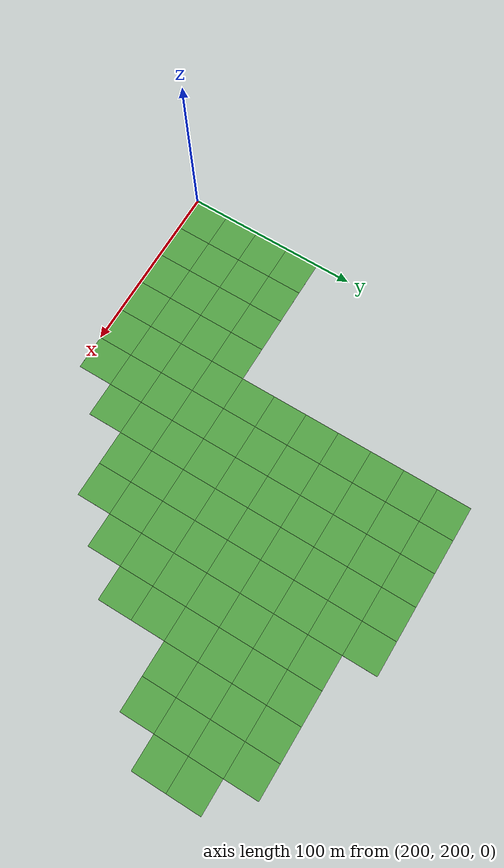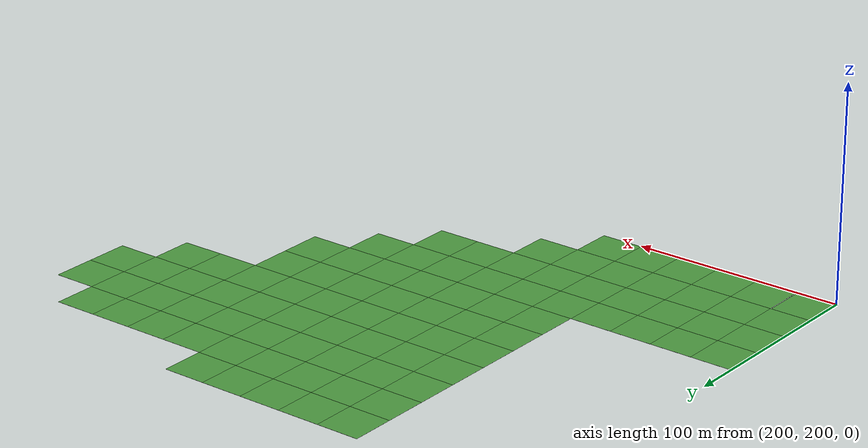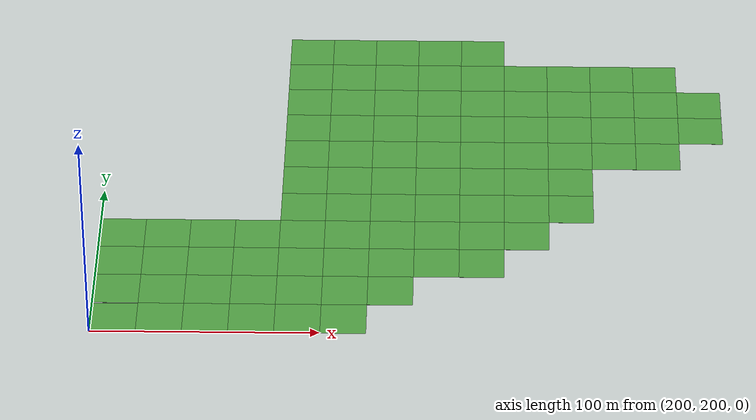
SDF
<?xml version="1.0" ?>
<sdf version="1.5">
  <world name="default">
    <!-- A global light source -->
    <include>
      <uri>model://sun</uri>
    </include>
    <include>
      <uri>model://grass_plane</uri>
      <pose>250 250 -0.1 0 0 0</pose>
    </include>
    <plugin name='dryden_world' filename='libgazebo_dryden_plugin.so'>
      <frameId>base_link</frameId>
      <robotNamespace/>
      <windVelocityMean>3.0</windVelocityMean>
      <windVelocityMax>3.0</windVelocityMax>
      <windVelocityVariance>0</windVelocityVariance>
      <windDirectionMean>0 1 0</windDirectionMean>
      <windDirectionVariance>0</windDirectionVariance>
      <windGustStart>1</windGustStart>
      <windGustDuration>500</windGustDuration>
      <windGustVelocityMean>3.0</windGustVelocityMean>
      <windGustVelocityMax>3.0</windGustVelocityMax>
      <windGustVelocityVariance>0.1</windGustVelocityVariance>
      <windGustDirectionMean>1 0 0</windGustDirectionMean>
      <windGustDirectionVariance>0.5</windGustDirectionVariance>
      <windPubTopic>world_wind</windPubTopic>
    </plugin>
    <physics name='default_physics' default='0' type='ode'>
      <gravity>0 0 -9.8066</gravity>
      <ode>
        <solver>
          <type>quick</type>
          <iters>10</iters>
          <sor>1.3</sor>
          <use_dynamic_moi_rescaling>0</use_dynamic_moi_rescaling>
        </solver>
        <constraints>
          <cfm>0</cfm>
          <erp>0.2</erp>
          <contact_max_correcting_vel>100</contact_max_correcting_vel>
          <contact_surface_layer>0.001</contact_surface_layer>
        </constraints>
      </ode>
      <max_step_size>0.004</max_step_size>
      <real_time_factor>1</real_time_factor>
      <real_time_update_rate>250</real_time_update_rate>
      <magnetic_field>6.0e-6 2.3e-5 -4.2e-5</magnetic_field>
    </physics>
  </world>
</sdf>

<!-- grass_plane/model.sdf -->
<sdf version='1.4'>
  <model name='grass_plane'>
    <static>true</static>
    <link name='link'>
      <collision name='collision'>
        <geometry>
          <plane>
            <normal>0 0 1</normal>
            <size>500 500</size>
          </plane>
        </geometry>
        <surface>
          <friction>
            <ode>
              <mu>0.5</mu>
              <mu2>.5</mu2>
            </ode>
          </friction>
        </surface>
      </collision>

      <visual name='visual_0'>
        <pose>-40 -40 0 0 0 0</pose>

        <cast_shadows>false</cast_shadows>
        <geometry>
          <plane>
            <normal>0 0 1</normal>
            <size>20 20</size>
          </plane>
        </geometry>
        <material>
          <script>
            <uri>model://../model_source/models/grass_plane/materials/scripts</uri>
            <uri>model://../model_source/models/grass_plane/materials/textures</uri>
            <name>vrc/grass</name>
          </script>
        </material>
      </visual>

      <visual name='visual_1'>
        <pose>-20 -40 0 0 0 0</pose>

        <cast_shadows>false</cast_shadows>
        <geometry>
          <plane>
            <normal>0 0 1</normal>
            <size>20 20</size>
          </plane>
        </geometry>
        <material>
          <script>
            <uri>model://../model_source/models/grass_plane/materials/scripts</uri>
            <uri>model://../model_source/models/grass_plane/materials/textures</uri>
            <name>vrc/grass</name>
          </script>
        </material>
      </visual>

      <visual name='visual_2'>
        <pose>0 -40 0 0 0 0</pose>

        <cast_shadows>false</cast_shadows>
        <geometry>
          <plane>
            <normal>0 0 1</normal>
            <size>20 20</size>
          </plane>
        </geometry>
        <material>
          <script>
            <uri>model://../model_source/models/grass_plane/materials/scripts</uri>
            <uri>model://../model_source/models/grass_plane/materials/textures</uri>
            <name>vrc/grass</name>
          </script>
        </material>
      </visual>

      <visual name='visual_3'>
        <pose>20 -40 0 0 0 0</pose>

        <cast_shadows>false</cast_shadows>
        <geometry>
          <plane>
            <normal>0 0 1</normal>
            <size>20 20</size>
          </plane>
        </geometry>
        <material>
          <script>
            <uri>model://../model_source/models/grass_plane/materials/scripts</uri>
            <uri>model://../model_source/models/grass_plane/materials/textures</uri>
            <name>vrc/grass</name>
          </script>
        </material>
      </visual>

      <visual name='visual_4'>
        <pose>40 -40 0 0 0 0</pose>

        <cast_shadows>false</cast_shadows>
        <geometry>
          <plane>
            <normal>0 0 1</normal>
            <size>20 20</size>
          </plane>
        </geometry>
        <material>
          <script>
            <uri>model://../model_source/models/grass_plane/materials/scripts</uri>
            <uri>model://../model_source/models/grass_plane/materials/textures</uri>
            <name>vrc/grass</name>
          </script>
        </material>
      </visual>

      <visual name='visual_5'>
        <pose>60 -40 0 0 0 0</pose>

        <cast_shadows>false</cast_shadows>
        <geometry>
          <plane>
            <normal>0 0 1</normal>
            <size>20 20</size>
          </plane>
        </geometry>
        <material>
          <script>
            <uri>model://../model_source/models/grass_plane/materials/scripts</uri>
            <uri>model://../model_source/models/grass_plane/materials/textures</uri>
            <name>vrc/grass</name>
          </script>
        </material>
      </visual>

      <visual name='visual_6'>
        <pose>-40 -20 0 0 0 0</pose>

        <cast_shadows>false</cast_shadows>
        <geometry>
          <plane>
            <normal>0 0 1</normal>
            <size>20 20</size>
          </plane>
        </geometry>
        <material>
          <script>
            <uri>model://../model_source/models/grass_plane/materials/scripts</uri>
            <uri>model://../model_source/models/grass_plane/materials/textures</uri>
            <name>vrc/grass</name>
          </script>
        </material>
      </visual>

      <visual name='visual_7'>
        <pose>-20 -20 0 0 0 0</pose>

        <cast_shadows>false</cast_shadows>
        <geometry>
          <plane>
            <normal>0 0 1</normal>
            <size>20 20</size>
          </plane>
        </geometry>
        <material>
          <script>
            <uri>model://../model_source/models/grass_plane/materials/scripts</uri>
            <uri>model://../model_source/models/grass_plane/materials/textures</uri>
            <name>vrc/grass</name>
          </script>
        </material>
      </visual>

      <visual name='visual_8'>
        <pose>0 -20 0 0 0 0</pose>

        <cast_shadows>false</cast_shadows>
        <geometry>
          <plane>
            <normal>0 0 1</normal>
            <size>20 20</size>
          </plane>
        </geometry>
        <material>
          <script>
            <uri>model://../model_source/models/grass_plane/materials/scripts</uri>
            <uri>model://../model_source/models/grass_plane/materials/textures</uri>
            <name>vrc/grass</name>
          </script>
        </material>
      </visual>

      <visual name='visual_9'>
        <pose>20 -20 0 0 0 0</pose>

        <cast_shadows>false</cast_shadows>
        <geometry>
          <plane>
            <normal>0 0 1</normal>
            <size>20 20</size>
          </plane>
        </geometry>
        <material>
          <script>
            <uri>model://../model_source/models/grass_plane/materials/scripts</uri>
            <uri>model://../model_source/models/grass_plane/materials/textures</uri>
            <name>vrc/grass</name>
          </script>
        </material>
      </visual>

      <visual name='visual_10'>
        <pose>40 -20 0 0 0 0</pose>

        <cast_shadows>false</cast_shadows>
        <geometry>
          <plane>
            <normal>0 0 1</normal>
            <size>20 20</size>
          </plane>
        </geometry>
        <material>
          <script>
            <uri>model://../model_source/models/grass_plane/materials/scripts</uri>
            <uri>model://../model_source/models/grass_plane/materials/textures</uri>
            <name>vrc/grass</name>
          </script>
        </material>
      </visual>

      <visual name='visual_11'>
        <pose>60 -20 0 0 0 0</pose>

        <cast_shadows>false</cast_shadows>
        <geometry>
          <plane>
            <normal>0 0 1</normal>
            <size>20 20</size>
          </plane>
        </geometry>
        <material>
          <script>
            <uri>model://../model_source/models/grass_plane/materials/scripts</uri>
            <uri>model://../model_source/models/grass_plane/materials/textures</uri>
            <name>vrc/grass</name>
          </script>
        </material>
      </visual>

      <visual name='visual_12'>
        <pose>80 -20 0 0 0 0</pose>

        <cast_shadows>false</cast_shadows>
        <geometry>
          <plane>
            <normal>0 0 1</normal>
            <size>20 20</size>
          </plane>
        </geometry>
        <material>
          <script>
            <uri>model://../model_source/models/grass_plane/materials/scripts</uri>
            <uri>model://../model_source/models/grass_plane/materials/textures</uri>
            <name>vrc/grass</name>
          </script>
        </material>
      </visual>

      <visual name='visual_13'>
        <pose>-40 0 0 0 0 0</pose>

        <cast_shadows>false</cast_shadows>
        <geometry>
          <plane>
            <normal>0 0 1</normal>
            <size>20 20</size>
          </plane>
        </geometry>
        <material>
          <script>
            <uri>model://../model_source/models/grass_plane/materials/scripts</uri>
            <uri>model://../model_source/models/grass_plane/materials/textures</uri>
            <name>vrc/grass</name>
          </script>
        </material>
      </visual>

      <visual name='visual_14'>
        <pose>-20 0 0 0 0 0</pose>

        <cast_shadows>false</cast_shadows>
        <geometry>
          <plane>
            <normal>0 0 1</normal>
            <size>20 20</size>
          </plane>
        </geometry>
        <material>
          <script>
            <uri>model://../model_source/models/grass_plane/materials/scripts</uri>
            <uri>model://../model_source/models/grass_plane/materials/textures</uri>
            <name>vrc/grass</name>
          </script>
        </material>
      </visual>

      <visual name='visual_15'>
        <pose>0 0 0 0 0 0</pose>

        <cast_shadows>false</cast_shadows>
        <geometry>
          <plane>
            <normal>0 0 1</normal>
            <size>20 20</size>
          </plane>
        </geometry>
        <material>
          <script>
            <uri>model://../model_source/models/grass_plane/materials/scripts</uri>
            <uri>model://../model_source/models/grass_plane/materials/textures</uri>
            <name>vrc/grass</name>
          </script>
        </material>
      </visual>

      <visual name='visual_16'>
        <pose>20 0 0 0 0 0</pose>

        <cast_shadows>false</cast_shadows>
        <geometry>
          <plane>
            <normal>0 0 1</normal>
            <size>20 20</size>
          </plane>
        </geometry>
        <material>
          <script>
            <uri>model://../model_source/models/grass_plane/materials/scripts</uri>
            <uri>model://../model_source/models/grass_plane/materials/textures</uri>
            <name>vrc/grass</name>
          </script>
        </material>
      </visual>

      <visual name='visual_17'>
        <pose>40 0 0 0 0 0</pose>

        <cast_shadows>false</cast_shadows>
        <geometry>
          <plane>
            <normal>0 0 1</normal>
            <size>20 20</size>
          </plane>
        </geometry>
        <material>
          <script>
            <uri>model://../model_source/models/grass_plane/materials/scripts</uri>
            <uri>model://../model_source/models/grass_plane/materials/textures</uri>
            <name>vrc/grass</name>
          </script>
        </material>
      </visual>

      <visual name='visual_18'>
        <pose>60 0 0 0 0 0</pose>

        <cast_shadows>false</cast_shadows>
        <geometry>
          <plane>
            <normal>0 0 1</normal>
            <size>20 20</size>
          </plane>
        </geometry>
        <material>
          <script>
            <uri>model://../model_source/models/grass_plane/materials/scripts</uri>
            <uri>model://../model_source/models/grass_plane/materials/textures</uri>
            <name>vrc/grass</name>
          </script>
        </material>
      </visual>

      <visual name='visual_19'>
        <pose>80 0 0 0 0 0</pose>

        <cast_shadows>false</cast_shadows>
        <geometry>
          <plane>
            <normal>0 0 1</normal>
            <size>20 20</size>
          </plane>
        </geometry>
        <material>
          <script>
            <uri>model://../model_source/models/grass_plane/materials/scripts</uri>
            <uri>model://../model_source/models/grass_plane/materials/textures</uri>
            <name>vrc/grass</name>
          </script>
        </material>
      </visual>

      <visual name='visual_20'>
        <pose>100 0 0 0 0 0</pose>

        <cast_shadows>false</cast_shadows>
        <geometry>
          <plane>
            <normal>0 0 1</normal>
            <size>20 20</size>
          </plane>
        </geometry>
        <material>
          <script>
            <uri>model://../model_source/models/grass_plane/materials/scripts</uri>
            <uri>model://../model_source/models/grass_plane/materials/textures</uri>
            <name>vrc/grass</name>
          </script>
        </material>
      </visual>

      <visual name='visual_21'>
        <pose>120 0 0 0 0 0</pose>

        <cast_shadows>false</cast_shadows>
        <geometry>
          <plane>
            <normal>0 0 1</normal>
            <size>20 20</size>
          </plane>
        </geometry>
        <material>
          <script>
            <uri>model://../model_source/models/grass_plane/materials/scripts</uri>
            <uri>model://../model_source/models/grass_plane/materials/textures</uri>
            <name>vrc/grass</name>
          </script>
        </material>
      </visual>

      <visual name='visual_22'>
        <pose>-40 20 0 0 0 0</pose>

        <cast_shadows>false</cast_shadows>
        <geometry>
          <plane>
            <normal>0 0 1</normal>
            <size>20 20</size>
          </plane>
        </geometry>
        <material>
          <script>
            <uri>model://../model_source/models/grass_plane/materials/scripts</uri>
            <uri>model://../model_source/models/grass_plane/materials/textures</uri>
            <name>vrc/grass</name>
          </script>
        </material>
      </visual>

      <visual name='visual_23'>
        <pose>-20 20 0 0 0 0</pose>

        <cast_shadows>false</cast_shadows>
        <geometry>
          <plane>
            <normal>0 0 1</normal>
            <size>20 20</size>
          </plane>
        </geometry>
        <material>
          <script>
            <uri>model://../model_source/models/grass_plane/materials/scripts</uri>
            <uri>model://../model_source/models/grass_plane/materials/textures</uri>
            <name>vrc/grass</name>
          </script>
        </material>
      </visual>

      <visual name='visual_24'>
        <pose>0 20 0 0 0 0</pose>

        <cast_shadows>false</cast_shadows>
        <geometry>
          <plane>
            <normal>0 0 1</normal>
            <size>20 20</size>
          </plane>
        </geometry>
        <material>
          <script>
            <uri>model://../model_source/models/grass_plane/materials/scripts</uri>
            <uri>model://../model_source/models/grass_plane/materials/textures</uri>
            <name>vrc/grass</name>
          </script>
        </material>
      </visual>

      <visual name='visual_25'>
        <pose>20 20 0 0 0 0</pose>

        <cast_shadows>false</cast_shadows>
        <geometry>
          <plane>
            <normal>0 0 1</normal>
            <size>20 20</size>
          </plane>
        </geometry>
        <material>
          <script>
            <uri>model://../model_source/models/grass_plane/materials/scripts</uri>
            <uri>model://../model_source/models/grass_plane/materials/textures</uri>
            <name>vrc/grass</name>
          </script>
        </material>
      </visual>

      <visual name='visual_26'>
        <pose>40 20 0 0 0 0</pose>

        <cast_shadows>false</cast_shadows>
        <geometry>
          <plane>
            <normal>0 0 1</normal>
            <size>20 20</size>
          </plane>
        </geometry>
        <material>
          <script>
            <uri>model://../model_source/models/grass_plane/materials/scripts</uri>
            <uri>model://../model_source/models/grass_plane/materials/textures</uri>
            <name>vrc/grass</name>
          </script>
        </material>
      </visual>

      <visual name='visual_27'>
        <pose>60 20 0 0 0 0</pose>

        <cast_shadows>false</cast_shadows>
        <geometry>
          <plane>
            <normal>0 0 1</normal>
            <size>20 20</size>
          </plane>
        </geometry>
        <material>
          <script>
            <uri>model://../model_source/models/grass_plane/materials/scripts</uri>
            <uri>model://../model_source/models/grass_plane/materials/textures</uri>
            <name>vrc/grass</name>
          </script>
        </material>
      </visual>

      <visual name='visual_28'>
        <pose>80 20 0 0 0 0</pose>

        <cast_shadows>false</cast_shadows>
        <geometry>
          <plane>
            <normal>0 0 1</normal>
            <size>20 20</size>
          </plane>
        </geometry>
        <material>
          <script>
            <uri>model://../model_source/models/grass_plane/materials/scripts</uri>
            <uri>model://../model_source/models/grass_plane/materials/textures</uri>
            <name>vrc/grass</name>
          </script>
        </material>
      </visual>

      <visual name='visual_29'>
        <pose>100 20 0 0 0 0</pose>

        <cast_shadows>false</cast_shadows>
        <geometry>
          <plane>
            <normal>0 0 1</normal>
            <size>20 20</size>
          </plane>
        </geometry>
        <material>
          <script>
            <uri>model://../model_source/models/grass_plane/materials/scripts</uri>
            <uri>model://../model_source/models/grass_plane/materials/textures</uri>
            <name>vrc/grass</name>
          </script>
        </material>
      </visual>

      <visual name='visual_30'>
        <pose>120 20 0 0 0 0</pose>

        <cast_shadows>false</cast_shadows>
        <geometry>
          <plane>
            <normal>0 0 1</normal>
            <size>20 20</size>
          </plane>
        </geometry>
        <material>
          <script>
            <uri>model://../model_source/models/grass_plane/materials/scripts</uri>
            <uri>model://../model_source/models/grass_plane/materials/textures</uri>
            <name>vrc/grass</name>
          </script>
        </material>
      </visual>

      <visual name='visual_31'>
        <pose>140 20 0 0 0 0</pose>

        <cast_shadows>false</cast_shadows>
        <geometry>
          <plane>
            <normal>0 0 1</normal>
            <size>20 20</size>
          </plane>
        </geometry>
        <material>
          <script>
            <uri>model://../model_source/models/grass_plane/materials/scripts</uri>
            <uri>model://../model_source/models/grass_plane/materials/textures</uri>
            <name>vrc/grass</name>
          </script>
        </material>
      </visual>

      <visual name='visual_32'>
        <pose>40 40 0 0 0 0</pose>

        <cast_shadows>false</cast_shadows>
        <geometry>
          <plane>
            <normal>0 0 1</normal>
            <size>20 20</size>
          </plane>
        </geometry>
        <material>
          <script>
            <uri>model://../model_source/models/grass_plane/materials/scripts</uri>
            <uri>model://../model_source/models/grass_plane/materials/textures</uri>
            <name>vrc/grass</name>
          </script>
        </material>
      </visual>

      <visual name='visual_33'>
        <pose>60 40 0 0 0 0</pose>

        <cast_shadows>false</cast_shadows>
        <geometry>
          <plane>
            <normal>0 0 1</normal>
            <size>20 20</size>
          </plane>
        </geometry>
        <material>
          <script>
            <uri>model://../model_source/models/grass_plane/materials/scripts</uri>
            <uri>model://../model_source/models/grass_plane/materials/textures</uri>
            <name>vrc/grass</name>
          </script>
        </material>
      </visual>

      <visual name='visual_34'>
        <pose>80 40 0 0 0 0</pose>

        <cast_shadows>false</cast_shadows>
        <geometry>
          <plane>
            <normal>0 0 1</normal>
            <size>20 20</size>
          </plane>
        </geometry>
        <material>
          <script>
            <uri>model://../model_source/models/grass_plane/materials/scripts</uri>
            <uri>model://../model_source/models/grass_plane/materials/textures</uri>
            <name>vrc/grass</name>
          </script>
        </material>
      </visual>

      <visual name='visual_35'>
        <pose>100 40 0 0 0 0</pose>

        <cast_shadows>false</cast_shadows>
        <geometry>
          <plane>
            <normal>0 0 1</normal>
            <size>20 20</size>
          </plane>
        </geometry>
        <material>
          <script>
            <uri>model://../model_source/models/grass_plane/materials/scripts</uri>
            <uri>model://../model_source/models/grass_plane/materials/textures</uri>
            <name>vrc/grass</name>
          </script>
        </material>
      </visual>

      <visual name='visual_36'>
        <pose>120 40 0 0 0 0</pose>

        <cast_shadows>false</cast_shadows>
        <geometry>
          <plane>
            <normal>0 0 1</normal>
            <size>20 20</size>
          </plane>
        </geometry>
        <material>
          <script>
            <uri>model://../model_source/models/grass_plane/materials/scripts</uri>
            <uri>model://../model_source/models/grass_plane/materials/textures</uri>
            <name>vrc/grass</name>
          </script>
        </material>
      </visual>

      <visual name='visual_37'>
        <pose>140 40 0 0 0 0</pose>

        <cast_shadows>false</cast_shadows>
        <geometry>
          <plane>
            <normal>0 0 1</normal>
            <size>20 20</size>
          </plane>
        </geometry>
        <material>
          <script>
            <uri>model://../model_source/models/grass_plane/materials/scripts</uri>
            <uri>model://../model_source/models/grass_plane/materials/textures</uri>
            <name>vrc/grass</name>
          </script>
        </material>
      </visual>

      <visual name='visual_38'>
        <pose>160 40 0 0 0 0</pose>

        <cast_shadows>false</cast_shadows>
        <geometry>
          <plane>
            <normal>0 0 1</normal>
            <size>20 20</size>
          </plane>
        </geometry>
        <material>
          <script>
            <uri>model://../model_source/models/grass_plane/materials/scripts</uri>
            <uri>model://../model_source/models/grass_plane/materials/textures</uri>
            <name>vrc/grass</name>
          </script>
        </material>
      </visual>

      <visual name='visual_39'>
        <pose>40 60 0 0 0 0</pose>

        <cast_shadows>false</cast_shadows>
        <geometry>
          <plane>
            <normal>0 0 1</normal>
            <size>20 20</size>
          </plane>
        </geometry>
        <material>
          <script>
            <uri>model://../model_source/models/grass_plane/materials/scripts</uri>
            <uri>model://../model_source/models/grass_plane/materials/textures</uri>
            <name>vrc/grass</name>
          </script>
        </material>
      </visual>

      <visual name='visual_40'>
        <pose>60 60 0 0 0 0</pose>

        <cast_shadows>false</cast_shadows>
        <geometry>
          <plane>
            <normal>0 0 1</normal>
            <size>20 20</size>
          </plane>
        </geometry>
        <material>
          <script>
            <uri>model://../model_source/models/grass_plane/materials/scripts</uri>
            <uri>model://../model_source/models/grass_plane/materials/textures</uri>
            <name>vrc/grass</name>
          </script>
        </material>
      </visual>

      <visual name='visual_41'>
        <pose>80 60 0 0 0 0</pose>

        <cast_shadows>false</cast_shadows>
        <geometry>
          <plane>
            <normal>0 0 1</normal>
            <size>20 20</size>
          </plane>
        </geometry>
        <material>
          <script>
            <uri>model://../model_source/models/grass_plane/materials/scripts</uri>
            <uri>model://../model_source/models/grass_plane/materials/textures</uri>
            <name>vrc/grass</name>
          </script>
        </material>
      </visual>

      <visual name='visual_42'>
        <pose>100 60 0 0 0 0</pose>

        <cast_shadows>false</cast_shadows>
        <geometry>
          <plane>
            <normal>0 0 1</normal>
            <size>20 20</size>
          </plane>
        </geometry>
        <material>
          <script>
            <uri>model://../model_source/models/grass_plane/materials/scripts</uri>
            <uri>model://../model_source/models/grass_plane/materials/textures</uri>
            <name>vrc/grass</name>
          </script>
        </material>
      </visual>

      <visual name='visual_43'>
        <pose>120 60 0 0 0 0</pose>

        <cast_shadows>false</cast_shadows>
        <geometry>
          <plane>
            <normal>0 0 1</normal>
            <size>20 20</size>
          </plane>
        </geometry>
        <material>
          <script>
            <uri>model://../model_source/models/grass_plane/materials/scripts</uri>
            <uri>model://../model_source/models/grass_plane/materials/textures</uri>
            <name>vrc/grass</name>
          </script>
        </material>
      </visual>

      <visual name='visual_44'>
        <pose>140 60 0 0 0 0</pose>

        <cast_shadows>false</cast_shadows>
        <geometry>
          <plane>
            <normal>0 0 1</normal>
            <size>20 20</size>
          </plane>
        </geometry>
        <material>
          <script>
            <uri>model://../model_source/models/grass_plane/materials/scripts</uri>
            <uri>model://../model_source/models/grass_plane/materials/textures</uri>
            <name>vrc/grass</name>
          </script>
        </material>
      </visual>

      <visual name='visual_45'>
        <pose>160 60 0 0 0 0</pose>

        <cast_shadows>false</cast_shadows>
        <geometry>
          <plane>
            <normal>0 0 1</normal>
            <size>20 20</size>
          </plane>
        </geometry>
        <material>
          <script>
            <uri>model://../model_source/models/grass_plane/materials/scripts</uri>
            <uri>model://../model_source/models/grass_plane/materials/textures</uri>
            <name>vrc/grass</name>
          </script>
        </material>
      </visual>

      <visual name='visual_46'>
        <pose>40 80 0 0 0 0</pose>

        <cast_shadows>false</cast_shadows>
        <geometry>
          <plane>
            <normal>0 0 1</normal>
            <size>20 20</size>
          </plane>
        </geometry>
        <material>
          <script>
            <uri>model://../model_source/models/grass_plane/materials/scripts</uri>
            <uri>model://../model_source/models/grass_plane/materials/textures</uri>
            <name>vrc/grass</name>
          </script>
        </material>
      </visual>

      <visual name='visual_47'>
        <pose>60 80 0 0 0 0</pose>

        <cast_shadows>false</cast_shadows>
        <geometry>
          <plane>
            <normal>0 0 1</normal>
            <size>20 20</size>
          </plane>
        </geometry>
        <material>
          <script>
            <uri>model://../model_source/models/grass_plane/materials/scripts</uri>
            <uri>model://../model_source/models/grass_plane/materials/textures</uri>
            <name>vrc/grass</name>
          </script>
        </material>
      </visual>

      <visual name='visual_48'>
        <pose>80 80 0 0 0 0</pose>

        <cast_shadows>false</cast_shadows>
        <geometry>
          <plane>
            <normal>0 0 1</normal>
            <size>20 20</size>
          </plane>
        </geometry>
        <material>
          <script>
            <uri>model://../model_source/models/grass_plane/materials/scripts</uri>
            <uri>model://../model_source/models/grass_plane/materials/textures</uri>
            <name>vrc/grass</name>
          </script>
        </material>
      </visual>

      <visual name='visual_49'>
        <pose>100 80 0 0 0 0</pose>

        <cast_shadows>false</cast_shadows>
        <geometry>
          <plane>
            <normal>0 0 1</normal>
            <size>20 20</size>
          </plane>
        </geometry>
        <material>
          <script>
            <uri>model://../model_source/models/grass_plane/materials/scripts</uri>
            <uri>model://../model_source/models/grass_plane/materials/textures</uri>
            <name>vrc/grass</name>
          </script>
        </material>
      </visual>

      <visual name='visual_50'>
        <pose>120 80 0 0 0 0</pose>

        <cast_shadows>false</cast_shadows>
        <geometry>
          <plane>
            <normal>0 0 1</normal>
            <size>20 20</size>
          </plane>
        </geometry>
        <material>
          <script>
            <uri>model://../model_source/models/grass_plane/materials/scripts</uri>
            <uri>model://../model_source/models/grass_plane/materials/textures</uri>
            <name>vrc/grass</name>
          </script>
        </material>
      </visual>

      <visual name='visual_51'>
        <pose>140 80 0 0 0 0</pose>

        <cast_shadows>false</cast_shadows>
        <geometry>
          <plane>
            <normal>0 0 1</normal>
            <size>20 20</size>
          </plane>
        </geometry>
        <material>
          <script>
            <uri>model://../model_source/models/grass_plane/materials/scripts</uri>
            <uri>model://../model_source/models/grass_plane/materials/textures</uri>
            <name>vrc/grass</name>
          </script>
        </material>
      </visual>

      <visual name='visual_52'>
        <pose>160 80 0 0 0 0</pose>

        <cast_shadows>false</cast_shadows>
        <geometry>
          <plane>
            <normal>0 0 1</normal>
            <size>20 20</size>
          </plane>
        </geometry>
        <material>
          <script>
            <uri>model://../model_source/models/grass_plane/materials/scripts</uri>
            <uri>model://../model_source/models/grass_plane/materials/textures</uri>
            <name>vrc/grass</name>
          </script>
        </material>
      </visual>

      <visual name='visual_53'>
        <pose>180 80 0 0 0 0</pose>

        <cast_shadows>false</cast_shadows>
        <geometry>
          <plane>
            <normal>0 0 1</normal>
            <size>20 20</size>
          </plane>
        </geometry>
        <material>
          <script>
            <uri>model://../model_source/models/grass_plane/materials/scripts</uri>
            <uri>model://../model_source/models/grass_plane/materials/textures</uri>
            <name>vrc/grass</name>
          </script>
        </material>
      </visual>

      <visual name='visual_54'>
        <pose>200 80 0 0 0 0</pose>

        <cast_shadows>false</cast_shadows>
        <geometry>
          <plane>
            <normal>0 0 1</normal>
            <size>20 20</size>
          </plane>
        </geometry>
        <material>
          <script>
            <uri>model://../model_source/models/grass_plane/materials/scripts</uri>
            <uri>model://../model_source/models/grass_plane/materials/textures</uri>
            <name>vrc/grass</name>
          </script>
        </material>
      </visual>

      <visual name='visual_55'>
        <pose>40 100 0 0 0 0</pose>

        <cast_shadows>false</cast_shadows>
        <geometry>
          <plane>
            <normal>0 0 1</normal>
            <size>20 20</size>
          </plane>
        </geometry>
        <material>
          <script>
            <uri>model://../model_source/models/grass_plane/materials/scripts</uri>
            <uri>model://../model_source/models/grass_plane/materials/textures</uri>
            <name>vrc/grass</name>
          </script>
        </material>
      </visual>

      <visual name='visual_56'>
        <pose>60 100 0 0 0 0</pose>

        <cast_shadows>false</cast_shadows>
        <geometry>
          <plane>
            <normal>0 0 1</normal>
            <size>20 20</size>
          </plane>
        </geometry>
        <material>
          <script>
            <uri>model://../model_source/models/grass_plane/materials/scripts</uri>
            <uri>model://../model_source/models/grass_plane/materials/textures</uri>
            <name>vrc/grass</name>
          </script>
        </material>
      </visual>

      <visual name='visual_57'>
        <pose>80 100 0 0 0 0</pose>

        <cast_shadows>false</cast_shadows>
        <geometry>
          <plane>
            <normal>0 0 1</normal>
            <size>20 20</size>
          </plane>
        </geometry>
        <material>
          <script>
            <uri>model://../model_source/models/grass_plane/materials/scripts</uri>
            <uri>model://../model_source/models/grass_plane/materials/textures</uri>
            <name>vrc/grass</name>
          </script>
        </material>
      </visual>

      <visual name='visual_58'>
        <pose>100 100 0 0 0 0</pose>

        <cast_shadows>false</cast_shadows>
        <geometry>
          <plane>
            <normal>0 0 1</normal>
            <size>20 20</size>
          </plane>
        </geometry>
        <material>
          <script>
            <uri>model://../model_source/models/grass_plane/materials/scripts</uri>
            <uri>model://../model_source/models/grass_plane/materials/textures</uri>
            <name>vrc/grass</name>
          </script>
        </material>
      </visual>

      <visual name='visual_59'>
        <pose>120 100 0 0 0 0</pose>

        <cast_shadows>false</cast_shadows>
        <geometry>
          <plane>
            <normal>0 0 1</normal>
            <size>20 20</size>
          </plane>
        </geometry>
        <material>
          <script>
            <uri>model://../model_source/models/grass_plane/materials/scripts</uri>
            <uri>model://../model_source/models/grass_plane/materials/textures</uri>
            <name>vrc/grass</name>
          </script>
        </material>
      </visual>

      <visual name='visual_60'>
        <pose>140 100 0 0 0 0</pose>

        <cast_shadows>false</cast_shadows>
        <geometry>
          <plane>
            <normal>0 0 1</normal>
            <size>20 20</size>
          </plane>
        </geometry>
        <material>
          <script>
            <uri>model://../model_source/models/grass_plane/materials/scripts</uri>
            <uri>model://../model_source/models/grass_plane/materials/textures</uri>
            <name>vrc/grass</name>
          </script>
        </material>
      </visual>

      <visual name='visual_61'>
        <pose>160 100 0 0 0 0</pose>

        <cast_shadows>false</cast_shadows>
        <geometry>
          <plane>
            <normal>0 0 1</normal>
            <size>20 20</size>
          </plane>
        </geometry>
        <material>
          <script>
            <uri>model://../model_source/models/grass_plane/materials/scripts</uri>
            <uri>model://../model_source/models/grass_plane/materials/textures</uri>
            <name>vrc/grass</name>
          </script>
        </material>
      </visual>

      <visual name='visual_62'>
        <pose>180 100 0 0 0 0</pose>

        <cast_shadows>false</cast_shadows>
        <geometry>
          <plane>
            <normal>0 0 1</normal>
            <size>20 20</size>
          </plane>
        </geometry>
        <material>
          <script>
            <uri>model://../model_source/models/grass_plane/materials/scripts</uri>
            <uri>model://../model_source/models/grass_plane/materials/textures</uri>
            <name>vrc/grass</name>
          </script>
        </material>
      </visual>

      <visual name='visual_63'>
        <pose>200 100 0 0 0 0</pose>

        <cast_shadows>false</cast_shadows>
        <geometry>
          <plane>
            <normal>0 0 1</normal>
            <size>20 20</size>
          </plane>
        </geometry>
        <material>
          <script>
            <uri>model://../model_source/models/grass_plane/materials/scripts</uri>
            <uri>model://../model_source/models/grass_plane/materials/textures</uri>
            <name>vrc/grass</name>
          </script>
        </material>
      </visual>

      <visual name='visual_63a'>
        <pose>220 100 0 0 0 0</pose>

        <cast_shadows>false</cast_shadows>
        <geometry>
          <plane>
            <normal>0 0 1</normal>
            <size>20 20</size>
          </plane>
        </geometry>
        <material>
          <script>
            <uri>model://../model_source/models/grass_plane/materials/scripts</uri>
            <uri>model://../model_source/models/grass_plane/materials/textures</uri>
            <name>vrc/grass</name>
          </script>
        </material>
      </visual>

      <visual name='visual_64'>
        <pose>40 120 0 0 0 0</pose>

        <cast_shadows>false</cast_shadows>
        <geometry>
          <plane>
            <normal>0 0 1</normal>
            <size>20 20</size>
          </plane>
        </geometry>
        <material>
          <script>
            <uri>model://../model_source/models/grass_plane/materials/scripts</uri>
            <uri>model://../model_source/models/grass_plane/materials/textures</uri>
            <name>vrc/grass</name>
          </script>
        </material>
      </visual>

      <visual name='visual_65'>
        <pose>60 120 0 0 0 0</pose>

        <cast_shadows>false</cast_shadows>
        <geometry>
          <plane>
            <normal>0 0 1</normal>
            <size>20 20</size>
          </plane>
        </geometry>
        <material>
          <script>
            <uri>model://../model_source/models/grass_plane/materials/scripts</uri>
            <uri>model://../model_source/models/grass_plane/materials/textures</uri>
            <name>vrc/grass</name>
          </script>
        </material>
      </visual>

      <visual name='visual_66'>
        <pose>80 120 0 0 0 0</pose>

        <cast_shadows>false</cast_shadows>
        <geometry>
          <plane>
            <normal>0 0 1</normal>
            <size>20 20</size>
          </plane>
        </geometry>
        <material>
          <script>
            <uri>model://../model_source/models/grass_plane/materials/scripts</uri>
            <uri>model://../model_source/models/grass_plane/materials/textures</uri>
            <name>vrc/grass</name>
          </script>
        </material>
      </visual>

      <visual name='visual_67'>
        <pose>100 120 0 0 0 0</pose>

        <cast_shadows>false</cast_shadows>
        <geometry>
          <plane>
            <normal>0 0 1</normal>
            <size>20 20</size>
          </plane>
        </geometry>
        <material>
          <script>
            <uri>model://../model_source/models/grass_plane/materials/scripts</uri>
            <uri>model://../model_source/models/grass_plane/materials/textures</uri>
            <name>vrc/grass</name>
          </script>
        </material>
      </visual>

      <visual name='visual_68'>
        <pose>120 120 0 0 0 0</pose>

        <cast_shadows>false</cast_shadows>
        <geometry>
          <plane>
            <normal>0 0 1</normal>
            <size>20 20</size>
          </plane>
        </geometry>
        <material>
          <script>
            <uri>model://../model_source/models/grass_plane/materials/scripts</uri>
            <uri>model://../model_source/models/grass_plane/materials/textures</uri>
            <name>vrc/grass</name>
          </script>
        </material>
      </visual>

      <visual name='visual_69'>
        <pose>140 120 0 0 0 0</pose>

        <cast_shadows>false</cast_shadows>
        <geometry>
          <plane>
            <normal>0 0 1</normal>
            <size>20 20</size>
          </plane>
        </geometry>
        <material>
          <script>
            <uri>model://../model_source/models/grass_plane/materials/scripts</uri>
            <uri>model://../model_source/models/grass_plane/materials/textures</uri>
            <name>vrc/grass</name>
          </script>
        </material>
      </visual>

      <visual name='visual_70'>
        <pose>160 120 0 0 0 0</pose>

        <cast_shadows>false</cast_shadows>
        <geometry>
          <plane>
            <normal>0 0 1</normal>
            <size>20 20</size>
          </plane>
        </geometry>
        <material>
          <script>
            <uri>model://../model_source/models/grass_plane/materials/scripts</uri>
            <uri>model://../model_source/models/grass_plane/materials/textures</uri>
            <name>vrc/grass</name>
          </script>
        </material>
      </visual>

      <visual name='visual_71'>
        <pose>180 120 0 0 0 0</pose>

        <cast_shadows>false</cast_shadows>
        <geometry>
          <plane>
            <normal>0 0 1</normal>
            <size>20 20</size>
          </plane>
        </geometry>
        <material>
          <script>
            <uri>model://../model_source/models/grass_plane/materials/scripts</uri>
            <uri>model://../model_source/models/grass_plane/materials/textures</uri>
            <name>vrc/grass</name>
          </script>
        </material>
      </visual>

      <visual name='visual_72'>
        <pose>200 120 0 0 0 0</pose>

        <cast_shadows>false</cast_shadows>
        <geometry>
          <plane>
            <normal>0 0 1</normal>
            <size>20 20</size>
          </plane>
        </geometry>
        <material>
          <script>
            <uri>model://../model_source/models/grass_plane/materials/scripts</uri>
            <uri>model://../model_source/models/grass_plane/materials/textures</uri>
            <name>vrc/grass</name>
          </script>
        </material>
      </visual>

      <visual name='visual_72a'>
        <pose>220 120 0 0 0 0</pose>

        <cast_shadows>false</cast_shadows>
        <geometry>
          <plane>
            <normal>0 0 1</normal>
            <size>20 20</size>
          </plane>
        </geometry>
        <material>
          <script>
            <uri>model://../model_source/models/grass_plane/materials/scripts</uri>
            <uri>model://../model_source/models/grass_plane/materials/textures</uri>
            <name>vrc/grass</name>
          </script>
        </material>
      </visual>

      <visual name='visual_73'>
        <pose>40 140 0 0 0 0</pose>

        <cast_shadows>false</cast_shadows>
        <geometry>
          <plane>
            <normal>0 0 1</normal>
            <size>20 20</size>
          </plane>
        </geometry>
        <material>
          <script>
            <uri>model://../model_source/models/grass_plane/materials/scripts</uri>
            <uri>model://../model_source/models/grass_plane/materials/textures</uri>
            <name>vrc/grass</name>
          </script>
        </material>
      </visual>

      <visual name='visual_74'>
        <pose>60 140 0 0 0 0</pose>

        <cast_shadows>false</cast_shadows>
        <geometry>
          <plane>
            <normal>0 0 1</normal>
            <size>20 20</size>
          </plane>
        </geometry>
        <material>
          <script>
            <uri>model://../model_source/models/grass_plane/materials/scripts</uri>
            <uri>model://../model_source/models/grass_plane/materials/textures</uri>
            <name>vrc/grass</name>
          </script>
        </material>
      </visual>

      <visual name='visual_75'>
        <pose>80 140 0 0 0 0</pose>

        <cast_shadows>false</cast_shadows>
        <geometry>
          <plane>
            <normal>0 0 1</normal>
            <size>20 20</size>
          </plane>
        </geometry>
        <material>
          <script>
            <uri>model://../model_source/models/grass_plane/materials/scripts</uri>
            <uri>model://../model_source/models/grass_plane/materials/textures</uri>
            <name>vrc/grass</name>
          </script>
        </material>
      </visual>

      <visual name='visual_76'>
        <pose>100 140 0 0 0 0</pose>

        <cast_shadows>false</cast_shadows>
        <geometry>
          <plane>
            <normal>0 0 1</normal>
            <size>20 20</size>
          </plane>
        </geometry>
        <material>
          <script>
            <uri>model://../model_source/models/grass_plane/materials/scripts</uri>
            <uri>model://../model_source/models/grass_plane/materials/textures</uri>
            <name>vrc/grass</name>
          </script>
        </material>
      </visual>

      <visual name='visual_77'>
        <pose>120 140 0 0 0 0</pose>

        <cast_shadows>false</cast_shadows>
        <geometry>
          <plane>
            <normal>0 0 1</normal>
            <size>20 20</size>
          </plane>
        </geometry>
        <material>
          <script>
            <uri>model://../model_source/models/grass_plane/materials/scripts</uri>
            <uri>model://../model_source/models/grass_plane/materials/textures</uri>
            <name>vrc/grass</name>
          </script>
        </material>
      </visual>

      <visual name='visual_78'>
        <pose>140 140 0 0 0 0</pose>

        <cast_shadows>false</cast_shadows>
        <geometry>
          <plane>
            <normal>0 0 1</normal>
            <size>20 20</size>
          </plane>
        </geometry>
        <material>
          <script>
            <uri>model://../model_source/models/grass_plane/materials/scripts</uri>
            <uri>model://../model_source/models/grass_plane/materials/textures</uri>
            <name>vrc/grass</name>
          </script>
        </material>
      </visual>

      <visual name='visual_79'>
        <pose>160 140 0 0 0 0</pose>

        <cast_shadows>false</cast_shadows>
        <geometry>
          <plane>
            <normal>0 0 1</normal>
            <size>20 20</size>
          </plane>
        </geometry>
        <material>
          <script>
            <uri>model://../model_source/models/grass_plane/materials/scripts</uri>
            <uri>model://../model_source/models/grass_plane/materials/textures</uri>
            <name>vrc/grass</name>
          </script>
        </material>
      </visual>

      <visual name='visual_80'>
        <pose>180 140 0 0 0 0</pose>

        <cast_shadows>false</cast_shadows>
        <geometry>
          <plane>
            <normal>0 0 1</normal>
            <size>20 20</size>
          </plane>
        </geometry>
        <material>
          <script>
            <uri>model://../model_source/models/grass_plane/materials/scripts</uri>
            <uri>model://../model_source/models/grass_plane/materials/textures</uri>
            <name>vrc/grass</name>
          </script>
        </material>
      </visual>

      <visual name='visual_81'>
        <pose>200 140 0 0 0 0</pose>

        <cast_shadows>false</cast_shadows>
        <geometry>
          <plane>
            <normal>0 0 1</normal>
            <size>20 20</size>
          </plane>
        </geometry>
        <material>
          <script>
            <uri>model://../model_source/models/grass_plane/materials/scripts</uri>
            <uri>model://../model_source/models/grass_plane/materials/textures</uri>
            <name>vrc/grass</name>
          </script>
        </material>
      </visual>

      <visual name='visual_82'>
        <pose>40 160 0 0 0 0</pose>

        <cast_shadows>false</cast_shadows>
        <geometry>
          <plane>
            <normal>0 0 1</normal>
            <size>20 20</size>
          </plane>
        </geometry>
        <material>
          <script>
            <uri>model://../model_source/models/grass_plane/materials/scripts</uri>
            <uri>model://../model_source/models/grass_plane/materials/textures</uri>
            <name>vrc/grass</name>
          </script>
        </material>
      </visual>

      <visual name='visual_83'>
        <pose>60 160 0 0 0 0</pose>

        <cast_shadows>false</cast_shadows>
        <geometry>
          <plane>
            <normal>0 0 1</normal>
            <size>20 20</size>
          </plane>
        </geometry>
        <material>
          <script>
            <uri>model://../model_source/models/grass_plane/materials/scripts</uri>
            <uri>model://../model_source/models/grass_plane/materials/textures</uri>
            <name>vrc/grass</name>
          </script>
        </material>
      </visual>

      <visual name='visual_84'>
        <pose>80 160 0 0 0 0</pose>

        <cast_shadows>false</cast_shadows>
        <geometry>
          <plane>
            <normal>0 0 1</normal>
            <size>20 20</size>
          </plane>
        </geometry>
        <material>
          <script>
            <uri>model://../model_source/models/grass_plane/materials/scripts</uri>
            <uri>model://../model_source/models/grass_plane/materials/textures</uri>
            <name>vrc/grass</name>
          </script>
        </material>
      </visual>

      <visual name='visual_85'>
        <pose>100 160 0 0 0 0</pose>

        <cast_shadows>false</cast_shadows>
        <geometry>
          <plane>
            <normal>0 0 1</normal>
            <size>20 20</size>
          </plane>
        </geometry>
        <material>
          <script>
            <uri>model://../model_source/models/grass_plane/materials/scripts</uri>
            <uri>model://../model_source/models/grass_plane/materials/textures</uri>
            <name>vrc/grass</name>
          </script>
        </material>
      </visual>

      <visual name='visual_86'>
        <pose>120 160 0 0 0 0</pose>

        <cast_shadows>false</cast_shadows>
        <geometry>
          <plane>
            <normal>0 0 1</normal>
            <size>20 20</size>
          </plane>
        </geometry>
        <material>
          <script>
            <uri>model://../model_source/models/grass_plane/materials/scripts</uri>
            <uri>model://../model_source/models/grass_plane/materials/textures</uri>
            <name>vrc/grass</name>
          </script>
        </material>
      </visual>
    </link>
  </model>
</sdf>
